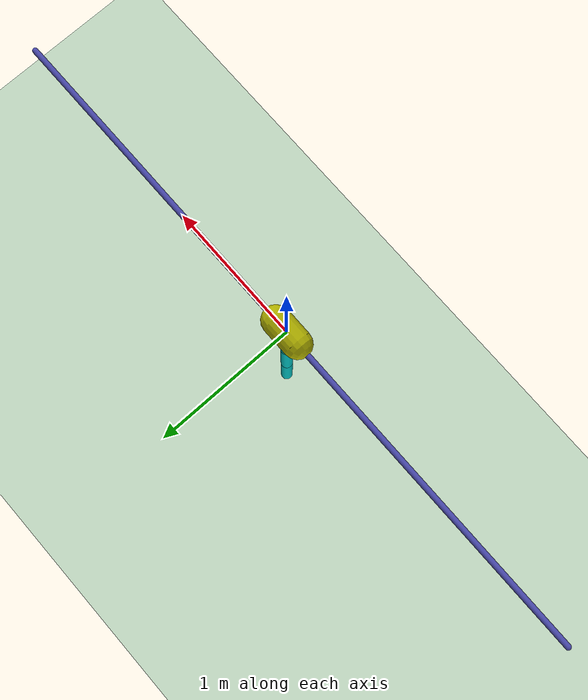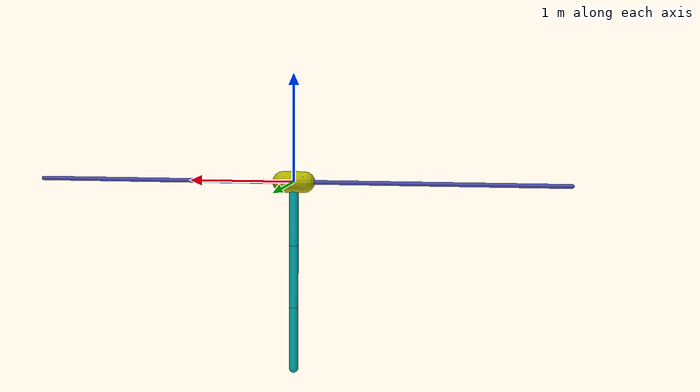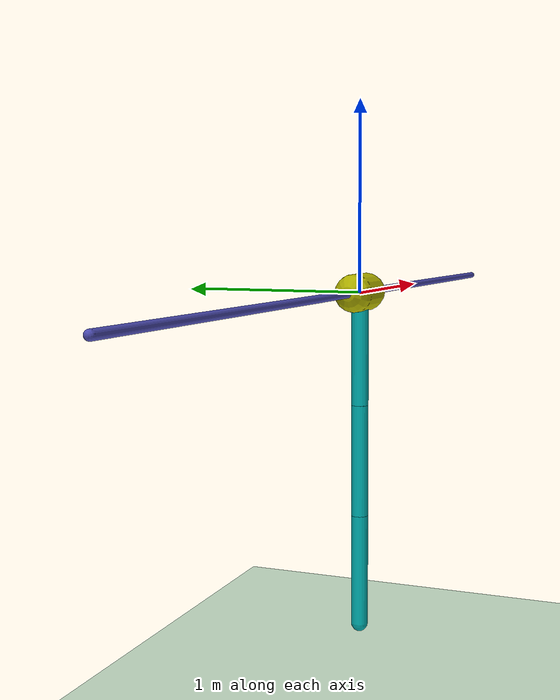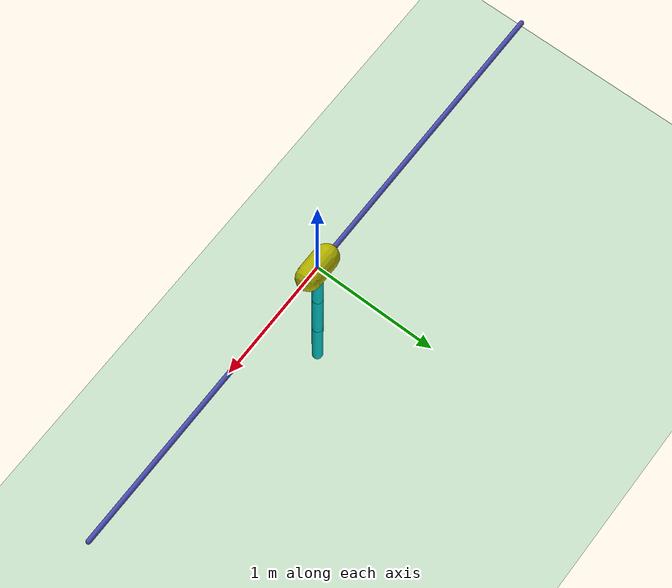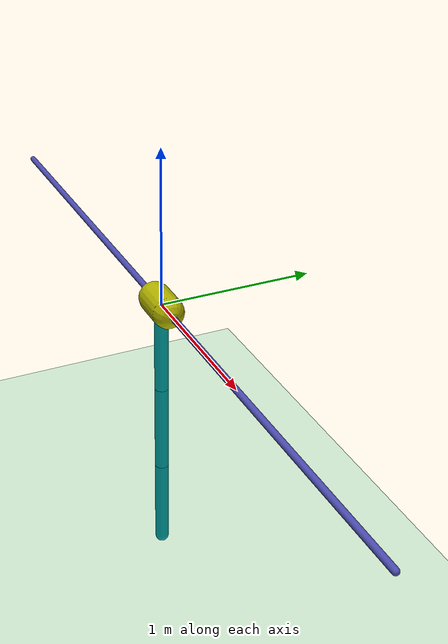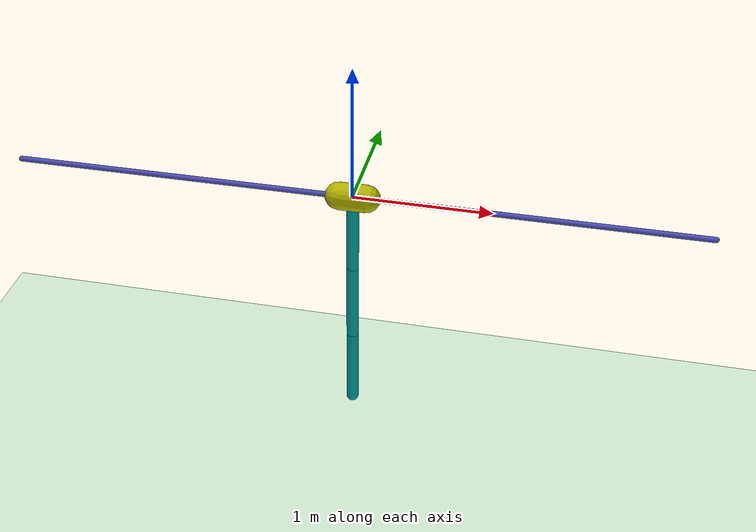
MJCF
<mujoco model="swingup_triple">
  <compiler coordinate="local" inertiafromgeom="true"/>
  <custom>
    <numeric data="2" name="frame_skip"/>
  </custom>
  <default>
    <joint damping="0.05"/>
    <geom contype="0" friction="1 0.1 0.1" rgba="0.7 0.7 0 1"/>
  </default>
  <option gravity="1e-5 0 -9.81" integrator="RK4" timestep="0.01"/>
  <size nstack="3000"/>
  <worldbody>
    <geom name="floor" pos="0 0 -3.0" rgba="0.8 0.9 0.8 1" size="40 40 40" type="plane"/>
    <geom name="rail" pos="0 0 0" quat="0.707 0 0.707 0" rgba="0.3 0.3 0.7 1" size="0.02 2.5" type="capsule"/>
    <body name="cart" pos="0 0 0">
      <joint axis="1 0 0" limited="true" margin="0.01" name="slider" pos="0 0 0" range="-2.5 2.5" type="slide"/>
      <geom name="cart" pos="0 0 0" quat="0.707 0 0.707 0" size="0.1 0.1" type="capsule"/>
      <body name="pole1" pos="0 0 0">
        <joint axis="0 1 0" name="hinge1" pos="0 0 0" type="hinge"/>
        <geom fromto="0 0 0 0 0 -0.6" name="cpole1" rgba="0 0.7 0.7 1" size="0.045 0.3" type="capsule"/>
        <body name="pole2" pos="0 0 -0.6">
          <joint axis="0 1 0" name="hinge2" damping="2." pos="0 0 0" type="hinge"/>
          <geom fromto="0 0 0 0 0 -0.6" name="cpole2" rgba="0 0.7 0.7 1" size="0.045 0.3" type="capsule"/>
          <body name="pole3" pos="0 0 -0.6">
            <joint axis="0 1 0" name="hinge3" damping="2." pos="0 0 0" type="hinge"/>
            <geom fromto="0 0 0 0 0 -0.6" name="cpole3" rgba="0 0.7 0.7 1" size="0.045 0.3" type="capsule"/>
            <site name="tip" pos="0 0 -0.6" size="0.01 0.01"/>
          </body>
        </body>
      </body>
    </body>
  </worldbody>
  <actuator>
    <motor ctrllimited="true" ctrlrange="-2.5 2.5" gear="1000" joint="slider" name="slide"/>
  </actuator>
</mujoco>
